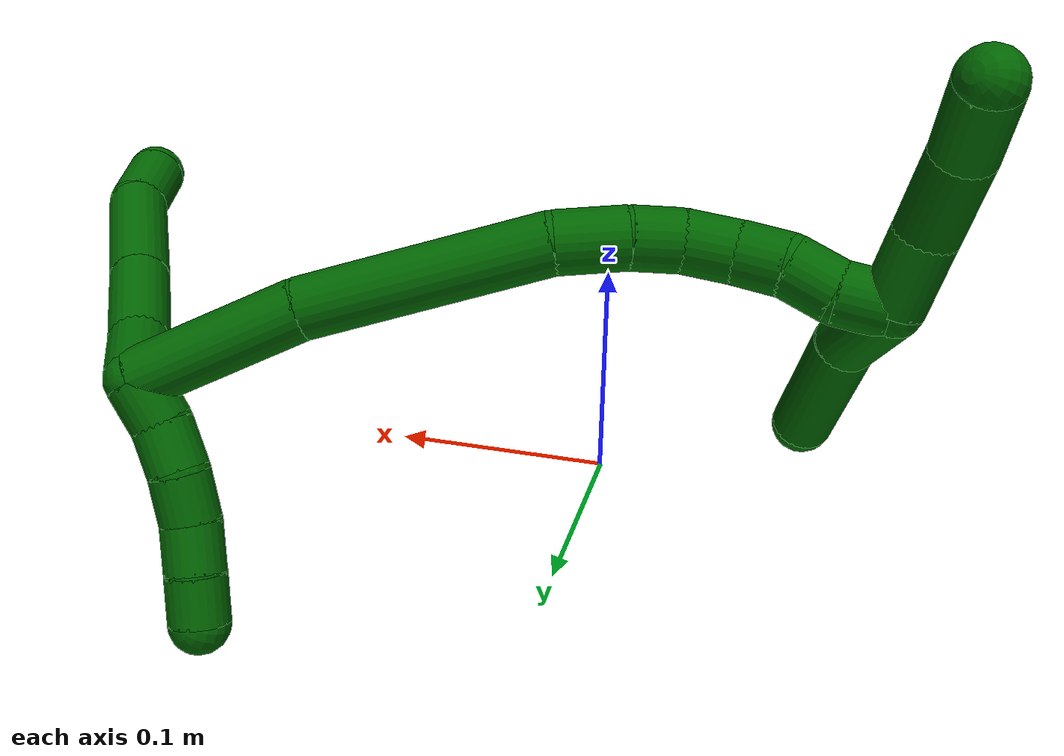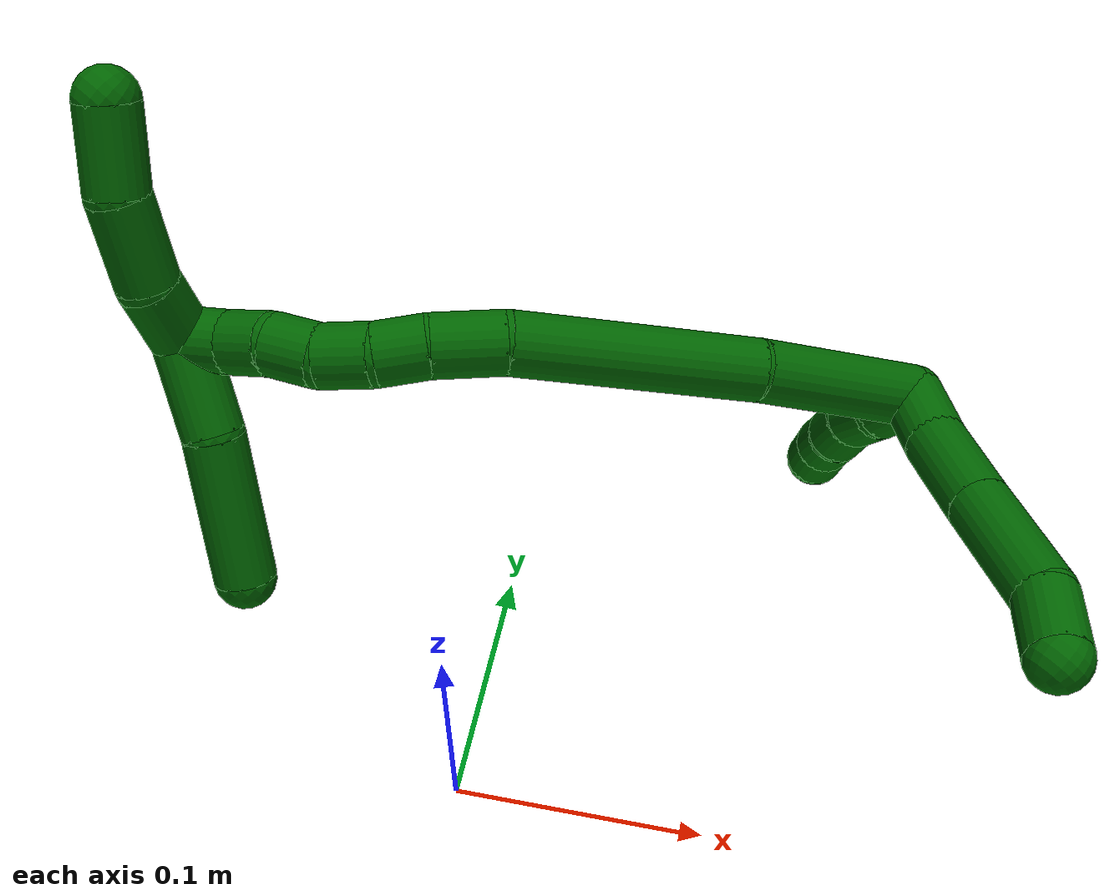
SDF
<sdf version="1.7">
 <world name="default">
  <model name="6">
   <static>0</static>
   <link name="6">
    <collision name="collision-cylinder-e_1_2_8">
     <pose>0.010932 -0.00581 -0.005757 2.35159 0.928475 1.75298</pose>
     <geometry><cylinder><radius>0.0125</radius><length>0.027306</length></cylinder></geometry>
     <surface>
      <friction><ode><mu>1.16</mu><mu2>1.16</mu2><slip1>0</slip1><slip2>0</slip2></ode></friction>
      <contact><ode><kp>1e+06</kp><kd>1</kd><max_vel>0</max_vel><min_depth>0.001</min_depth></ode></contact>
     </surface>
    </collision>
    <visual name="visual-cylinder-e_1_2_8">
     <pose>0.010932 -0.00581 -0.005757 2.35159 0.928475 1.75298</pose>
     <geometry><cylinder><radius>0.0125</radius><length>0.027306</length></cylinder></geometry>
     <material><ambient>0 0.392157 0.003922 1</ambient></material>
    </visual>
    <collision name="collision-cylinder-e_2_8_9">
     <pose>0.038104 -0.022466 -0.018352 2.13334 0.902463 1.44148</pose>
     <geometry><cylinder><radius>0.0125</radius><length>0.041381</length></cylinder></geometry>
     <surface>
      <friction><ode><mu>1.16</mu><mu2>1.16</mu2><slip1>0</slip1><slip2>0</slip2></ode></friction>
      <contact><ode><kp>1e+06</kp><kd>1</kd><max_vel>0</max_vel><min_depth>0.001</min_depth></ode></contact>
     </surface>
    </collision>
    <visual name="visual-cylinder-e_2_8_9">
     <pose>0.038104 -0.022466 -0.018352 2.13334 0.902463 1.44148</pose>
     <geometry><cylinder><radius>0.0125</radius><length>0.041381</length></cylinder></geometry>
     <material><ambient>0 0.392157 0.003922 1</ambient></material>
    </visual>
    <collision name="collision-cylinder-e_3_9_10">
     <pose>0.075272 -0.047138 -0.033486 2.1112 0.914351 1.43066</pose>
     <geometry><cylinder><radius>0.0125</radius><length>0.052841</length></cylinder></geometry>
     <surface>
      <friction><ode><mu>1.16</mu><mu2>1.16</mu2><slip1>0</slip1><slip2>0</slip2></ode></friction>
      <contact><ode><kp>1e+06</kp><kd>1</kd><max_vel>0</max_vel><min_depth>0.001</min_depth></ode></contact>
     </surface>
    </collision>
    <visual name="visual-cylinder-e_3_9_10">
     <pose>0.075272 -0.047138 -0.033486 2.1112 0.914351 1.43066</pose>
     <geometry><cylinder><radius>0.0125</radius><length>0.052841</length></cylinder></geometry>
     <material><ambient>0 0.392157 0.003922 1</ambient></material>
    </visual>
    <collision name="collision-cylinder-e_4_10_6">
     <pose>0.105201 -0.068302 -0.050018 2.41388 0.684383 1.50404</pose>
     <geometry><cylinder><radius>0.0125</radius><length>0.028472</length></cylinder></geometry>
     <surface>
      <friction><ode><mu>1.16</mu><mu2>1.16</mu2><slip1>0</slip1><slip2>0</slip2></ode></friction>
      <contact><ode><kp>1e+06</kp><kd>1</kd><max_vel>0</max_vel><min_depth>0.001</min_depth></ode></contact>
     </surface>
    </collision>
    <visual name="visual-cylinder-e_4_10_6">
     <pose>0.105201 -0.068302 -0.050018 2.41388 0.684383 1.50404</pose>
     <geometry><cylinder><radius>0.0125</radius><length>0.028472</length></cylinder></geometry>
     <material><ambient>0 0.392157 0.003922 1</ambient></material>
    </visual>
    <collision name="collision-cylinder-e_1_2_11">
     <pose>-0.004983 0.007182 -0.004856 -2.16533 -0.521689 0.931605</pose>
     <geometry><cylinder><radius>0.0125</radius><length>0.02</length></cylinder></geometry>
     <surface>
      <friction><ode><mu>1.16</mu><mu2>1.16</mu2><slip1>0</slip1><slip2>0</slip2></ode></friction>
      <contact><ode><kp>1e+06</kp><kd>1</kd><max_vel>0</max_vel><min_depth>0.001</min_depth></ode></contact>
     </surface>
    </collision>
    <visual name="visual-cylinder-e_1_2_11">
     <pose>-0.004983 0.007182 -0.004856 -2.16533 -0.521689 0.931605</pose>
     <geometry><cylinder><radius>0.0125</radius><length>0.02</length></cylinder></geometry>
     <material><ambient>0 0.392157 0.003922 1</ambient></material>
    </visual>
    <collision name="collision-cylinder-e_2_11_12">
     <pose>-0.01483 0.022529 -0.012823 -1.93484 -0.507878 0.720408</pose>
     <geometry><cylinder><radius>0.0125</radius><length>0.02</length></cylinder></geometry>
     <surface>
      <friction><ode><mu>1.16</mu><mu2>1.16</mu2><slip1>0</slip1><slip2>0</slip2></ode></friction>
      <contact><ode><kp>1e+06</kp><kd>1</kd><max_vel>0</max_vel><min_depth>0.001</min_depth></ode></contact>
     </surface>
    </collision>
    <visual name="visual-cylinder-e_2_11_12">
     <pose>-0.01483 0.022529 -0.012823 -1.93484 -0.507878 0.720408</pose>
     <geometry><cylinder><radius>0.0125</radius><length>0.02</length></cylinder></geometry>
     <material><ambient>0 0.392157 0.003922 1</ambient></material>
    </visual>
    <collision name="collision-cylinder-e_3_12_13">
     <pose>-0.022561 0.039665 -0.019298 -1.92948 -0.29084 0.416501</pose>
     <geometry><cylinder><radius>0.0125</radius><length>0.02</length></cylinder></geometry>
     <surface>
      <friction><ode><mu>1.16</mu><mu2>1.16</mu2><slip1>0</slip1><slip2>0</slip2></ode></friction>
      <contact><ode><kp>1e+06</kp><kd>1</kd><max_vel>0</max_vel><min_depth>0.001</min_depth></ode></contact>
     </surface>
    </collision>
    <visual name="visual-cylinder-e_3_12_13">
     <pose>-0.022561 0.039665 -0.019298 -1.92948 -0.29084 0.416501</pose>
     <geometry><cylinder><radius>0.0125</radius><length>0.02</length></cylinder></geometry>
     <material><ambient>0 0.392157 0.003922 1</ambient></material>
    </visual>
    <collision name="collision-cylinder-e_4_13_14">
     <pose>-0.028357 0.058034 -0.024416 -1.75547 -0.297249 0.356745</pose>
     <geometry><cylinder><radius>0.0125</radius><length>0.02</length></cylinder></geometry>
     <surface>
      <friction><ode><mu>1.16</mu><mu2>1.16</mu2><slip1>0</slip1><slip2>0</slip2></ode></friction>
      <contact><ode><kp>1e+06</kp><kd>1</kd><max_vel>0</max_vel><min_depth>0.001</min_depth></ode></contact>
     </surface>
    </collision>
    <visual name="visual-cylinder-e_4_13_14">
     <pose>-0.028357 0.058034 -0.024416 -1.75547 -0.297249 0.356745</pose>
     <geometry><cylinder><radius>0.0125</radius><length>0.02</length></cylinder></geometry>
     <material><ambient>0 0.392157 0.003922 1</ambient></material>
    </visual>
    <collision name="collision-cylinder-e_5_14_5">
     <pose>-0.033425 0.076955 -0.028354 -1.79604 -0.215491 0.269854</pose>
     <geometry><cylinder><radius>0.0125</radius><length>0.02</length></cylinder></geometry>
     <surface>
      <friction><ode><mu>1.16</mu><mu2>1.16</mu2><slip1>0</slip1><slip2>0</slip2></ode></friction>
      <contact><ode><kp>1e+06</kp><kd>1</kd><max_vel>0</max_vel><min_depth>0.001</min_depth></ode></contact>
     </surface>
    </collision>
    <visual name="visual-cylinder-e_5_14_5">
     <pose>-0.033425 0.076955 -0.028354 -1.79604 -0.215491 0.269854</pose>
     <geometry><cylinder><radius>0.0125</radius><length>0.02</length></cylinder></geometry>
     <material><ambient>0 0.392157 0.003922 1</ambient></material>
    </visual>
    <collision name="collision-cylinder-e_1_2_15">
     <pose>-0.021072 -0.02141 -0.018332 2.27889 -0.641975 -1.25119</pose>
     <geometry><cylinder><radius>0.0125</radius><length>0.070384</length></cylinder></geometry>
     <surface>
      <friction><ode><mu>1.16</mu><mu2>1.16</mu2><slip1>0</slip1><slip2>0</slip2></ode></friction>
      <contact><ode><kp>1e+06</kp><kd>1</kd><max_vel>0</max_vel><min_depth>0.001</min_depth></ode></contact>
     </surface>
    </collision>
    <visual name="visual-cylinder-e_1_2_15">
     <pose>-0.021072 -0.02141 -0.018332 2.27889 -0.641975 -1.25119</pose>
     <geometry><cylinder><radius>0.0125</radius><length>0.070384</length></cylinder></geometry>
     <material><ambient>0 0.392157 0.003922 1</ambient></material>
    </visual>
    <collision name="collision-cylinder-e_2_15_16">
     <pose>-0.075059 -0.066966 -0.065173 2.43887 -0.722216 -1.60061</pose>
     <geometry><cylinder><radius>0.0125</radius><length>0.099583</length></cylinder></geometry>
     <surface>
      <friction><ode><mu>1.16</mu><mu2>1.16</mu2><slip1>0</slip1><slip2>0</slip2></ode></friction>
      <contact><ode><kp>1e+06</kp><kd>1</kd><max_vel>0</max_vel><min_depth>0.001</min_depth></ode></contact>
     </surface>
    </collision>
    <visual name="visual-cylinder-e_2_15_16">
     <pose>-0.075059 -0.066966 -0.065173 2.43887 -0.722216 -1.60061</pose>
     <geometry><cylinder><radius>0.0125</radius><length>0.099583</length></cylinder></geometry>
     <material><ambient>0 0.392157 0.003922 1</ambient></material>
    </visual>
    <collision name="collision-cylinder-e_3_16_17">
     <pose>-0.117296 -0.095581 -0.103585 2.71767 -0.70916 -2.08857</pose>
     <geometry><cylinder><radius>0.0125</radius><length>0.02863</length></cylinder></geometry>
     <surface>
      <friction><ode><mu>1.16</mu><mu2>1.16</mu2><slip1>0</slip1><slip2>0</slip2></ode></friction>
      <contact><ode><kp>1e+06</kp><kd>1</kd><max_vel>0</max_vel><min_depth>0.001</min_depth></ode></contact>
     </surface>
    </collision>
    <visual name="visual-cylinder-e_3_16_17">
     <pose>-0.117296 -0.095581 -0.103585 2.71767 -0.70916 -2.08857</pose>
     <geometry><cylinder><radius>0.0125</radius><length>0.02863</length></cylinder></geometry>
     <material><ambient>0 0.392157 0.003922 1</ambient></material>
    </visual>
    <collision name="collision-cylinder-e_4_17_18">
     <pose>-0.132855 -0.102013 -0.121211 2.8928 -0.664033 -2.44575</pose>
     <geometry><cylinder><radius>0.0125</radius><length>0.020241</length></cylinder></geometry>
     <surface>
      <friction><ode><mu>1.16</mu><mu2>1.16</mu2><slip1>0</slip1><slip2>0</slip2></ode></friction>
      <contact><ode><kp>1e+06</kp><kd>1</kd><max_vel>0</max_vel><min_depth>0.001</min_depth></ode></contact>
     </surface>
    </collision>
    <visual name="visual-cylinder-e_4_17_18">
     <pose>-0.132855 -0.102013 -0.121211 2.8928 -0.664033 -2.44575</pose>
     <geometry><cylinder><radius>0.0125</radius><length>0.020241</length></cylinder></geometry>
     <material><ambient>0 0.392157 0.003922 1</ambient></material>
    </visual>
    <collision name="collision-cylinder-e_5_18_19">
     <pose>-0.147153 -0.104457 -0.135682 3.07024 -0.872737 -2.98882</pose>
     <geometry><cylinder><radius>0.0125</radius><length>0.021045</length></cylinder></geometry>
     <surface>
      <friction><ode><mu>1.16</mu><mu2>1.16</mu2><slip1>0</slip1><slip2>0</slip2></ode></friction>
      <contact><ode><kp>1e+06</kp><kd>1</kd><max_vel>0</max_vel><min_depth>0.001</min_depth></ode></contact>
     </surface>
    </collision>
    <visual name="visual-cylinder-e_5_18_19">
     <pose>-0.147153 -0.104457 -0.135682 3.07024 -0.872737 -2.98882</pose>
     <geometry><cylinder><radius>0.0125</radius><length>0.021045</length></cylinder></geometry>
     <material><ambient>0 0.392157 0.003922 1</ambient></material>
    </visual>
    <collision name="collision-cylinder-e_6_19_20">
     <pose>-0.164392 -0.104879 -0.146406 -3.12653 -1.16167 3.11865</pose>
     <geometry><cylinder><radius>0.0125</radius><length>0.020007</length></cylinder></geometry>
     <surface>
      <friction><ode><mu>1.16</mu><mu2>1.16</mu2><slip1>0</slip1><slip2>0</slip2></ode></friction>
      <contact><ode><kp>1e+06</kp><kd>1</kd><max_vel>0</max_vel><min_depth>0.001</min_depth></ode></contact>
     </surface>
    </collision>
    <visual name="visual-cylinder-e_6_19_20">
     <pose>-0.164392 -0.104879 -0.146406 -3.12653 -1.16167 3.11865</pose>
     <geometry><cylinder><radius>0.0125</radius><length>0.020007</length></cylinder></geometry>
     <material><ambient>0 0.392157 0.003922 1</ambient></material>
    </visual>
    <collision name="collision-cylinder-e_7_20_21">
     <pose>-0.181953 -0.102243 -0.155263 -2.65573 -0.988775 2.27971</pose>
     <geometry><cylinder><radius>0.0125</radius><length>0.02007</length></cylinder></geometry>
     <surface>
      <friction><ode><mu>1.16</mu><mu2>1.16</mu2><slip1>0</slip1><slip2>0</slip2></ode></friction>
      <contact><ode><kp>1e+06</kp><kd>1</kd><max_vel>0</max_vel><min_depth>0.001</min_depth></ode></contact>
     </surface>
    </collision>
    <visual name="visual-cylinder-e_7_20_21">
     <pose>-0.181953 -0.102243 -0.155263 -2.65573 -0.988775 2.27971</pose>
     <geometry><cylinder><radius>0.0125</radius><length>0.02007</length></cylinder></geometry>
     <material><ambient>0 0.392157 0.003922 1</ambient></material>
    </visual>
    <collision name="collision-cylinder-e_8_21_1">
     <pose>-0.198781 -0.099676 -0.165534 3.13997 -1.00248 -3.13863</pose>
     <geometry><cylinder><radius>0.0125</radius><length>0.02004</length></cylinder></geometry>
     <surface>
      <friction><ode><mu>1.16</mu><mu2>1.16</mu2><slip1>0</slip1><slip2>0</slip2></ode></friction>
      <contact><ode><kp>1e+06</kp><kd>1</kd><max_vel>0</max_vel><min_depth>0.001</min_depth></ode></contact>
     </surface>
    </collision>
    <visual name="visual-cylinder-e_8_21_1">
     <pose>-0.198781 -0.099676 -0.165534 3.13997 -1.00248 -3.13863</pose>
     <geometry><cylinder><radius>0.0125</radius><length>0.02004</length></cylinder></geometry>
     <material><ambient>0 0.392157 0.003922 1</ambient></material>
    </visual>
    <collision name="collision-cylinder-e_1_1_22">
     <pose>-0.211999 -0.113372 -0.167049 1.29471 -0.323764 -0.245697</pose>
     <geometry><cylinder><radius>0.0125</radius><length>0.030011</length></cylinder></geometry>
     <surface>
      <friction><ode><mu>1.16</mu><mu2>1.16</mu2><slip1>0</slip1><slip2>0</slip2></ode></friction>
      <contact><ode><kp>1e+06</kp><kd>1</kd><max_vel>0</max_vel><min_depth>0.001</min_depth></ode></contact>
     </surface>
    </collision>
    <visual name="visual-cylinder-e_1_1_22">
     <pose>-0.211999 -0.113372 -0.167049 1.29471 -0.323764 -0.245697</pose>
     <geometry><cylinder><radius>0.0125</radius><length>0.030011</length></cylinder></geometry>
     <material><ambient>0 0.392157 0.003922 1</ambient></material>
    </visual>
    <collision name="collision-cylinder-e_2_22_23">
     <pose>-0.224368 -0.140931 -0.154538 1.01409 -0.435112 -0.244364</pose>
     <geometry><cylinder><radius>0.0125</radius><length>0.036037</length></cylinder></geometry>
     <surface>
      <friction><ode><mu>1.16</mu><mu2>1.16</mu2><slip1>0</slip1><slip2>0</slip2></ode></friction>
      <contact><ode><kp>1e+06</kp><kd>1</kd><max_vel>0</max_vel><min_depth>0.001</min_depth></ode></contact>
     </surface>
    </collision>
    <visual name="visual-cylinder-e_2_22_23">
     <pose>-0.224368 -0.140931 -0.154538 1.01409 -0.435112 -0.244364</pose>
     <geometry><cylinder><radius>0.0125</radius><length>0.036037</length></cylinder></geometry>
     <material><ambient>0 0.392157 0.003922 1</ambient></material>
    </visual>
    <collision name="collision-cylinder-e_3_23_4">
     <pose>-0.239343 -0.16498 -0.134495 0.728349 -0.449752 -0.173944</pose>
     <geometry><cylinder><radius>0.0125</radius><length>0.033953</length></cylinder></geometry>
     <surface>
      <friction><ode><mu>1.16</mu><mu2>1.16</mu2><slip1>0</slip1><slip2>0</slip2></ode></friction>
      <contact><ode><kp>1e+06</kp><kd>1</kd><max_vel>0</max_vel><min_depth>0.001</min_depth></ode></contact>
     </surface>
    </collision>
    <visual name="visual-cylinder-e_3_23_4">
     <pose>-0.239343 -0.16498 -0.134495 0.728349 -0.449752 -0.173944</pose>
     <geometry><cylinder><radius>0.0125</radius><length>0.033953</length></cylinder></geometry>
     <material><ambient>0 0.392157 0.003922 1</ambient></material>
    </visual>
    <collision name="collision-cylinder-e_1_1_24">
     <pose>-0.193592 -0.090811 -0.181261 -2.43208 0.785856 -1.68294</pose>
     <geometry><cylinder><radius>0.0125</radius><length>0.038543</length></cylinder></geometry>
     <surface>
      <friction><ode><mu>1.16</mu><mu2>1.16</mu2><slip1>0</slip1><slip2>0</slip2></ode></friction>
      <contact><ode><kp>1e+06</kp><kd>1</kd><max_vel>0</max_vel><min_depth>0.001</min_depth></ode></contact>
     </surface>
    </collision>
    <visual name="visual-cylinder-e_1_1_24">
     <pose>-0.193592 -0.090811 -0.181261 -2.43208 0.785856 -1.68294</pose>
     <geometry><cylinder><radius>0.0125</radius><length>0.038543</length></cylinder></geometry>
     <material><ambient>0 0.392157 0.003922 1</ambient></material>
    </visual>
    <collision name="collision-cylinder-e_2_24_3">
     <pose>-0.164071 -0.062854 -0.209695 -2.32973 0.543379 -1.15016</pose>
     <geometry><cylinder><radius>0.0125</radius><length>0.061457</length></cylinder></geometry>
     <surface>
      <friction><ode><mu>1.16</mu><mu2>1.16</mu2><slip1>0</slip1><slip2>0</slip2></ode></friction>
      <contact><ode><kp>1e+06</kp><kd>1</kd><max_vel>0</max_vel><min_depth>0.001</min_depth></ode></contact>
     </surface>
    </collision>
    <visual name="visual-cylinder-e_2_24_3">
     <pose>-0.164071 -0.062854 -0.209695 -2.32973 0.543379 -1.15016</pose>
     <geometry><cylinder><radius>0.0125</radius><length>0.061457</length></cylinder></geometry>
     <material><ambient>0 0.392157 0.003922 1</ambient></material>
    </visual>
    <collision name="collision-sphere-3">
     <pose>-0.148184 -0.04377 -0.227795 0 -0 0</pose>
     <geometry><sphere><radius>0.0125</radius></sphere></geometry>
     <surface>
      <friction><ode><mu>1.16</mu><mu2>1.16</mu2><slip1>0</slip1><slip2>0</slip2></ode></friction>
      <contact><ode><kp>1e+06</kp><kd>1</kd><max_vel>0</max_vel><min_depth>0.001</min_depth></ode></contact>
     </surface>
    </collision>
    <visual name="visual-sphere-3">
     <pose>-0.148184 -0.04377 -0.227795 0 -0 0</pose>
     <geometry><sphere><radius>0.0125</radius></sphere></geometry>
     <material><ambient>0 0.392157 0.003922 1</ambient></material>
    </visual>
    <collision name="collision-sphere-24">
     <pose>-0.179959 -0.081938 -0.191595 0 -0 0</pose>
     <geometry><sphere><radius>0.0125</radius></sphere></geometry>
     <surface>
      <friction><ode><mu>1.16</mu><mu2>1.16</mu2><slip1>0</slip1><slip2>0</slip2></ode></friction>
      <contact><ode><kp>1e+06</kp><kd>1</kd><max_vel>0</max_vel><min_depth>0.001</min_depth></ode></contact>
     </surface>
    </collision>
    <visual name="visual-sphere-24">
     <pose>-0.179959 -0.081938 -0.191595 0 -0 0</pose>
     <geometry><sphere><radius>0.0125</radius></sphere></geometry>
     <material><ambient>0 0.392157 0.003922 1</ambient></material>
    </visual>
    <collision name="collision-sphere-4">
     <pose>-0.246724 -0.175156 -0.123086 0 -0 0</pose>
     <geometry><sphere><radius>0.0125</radius></sphere></geometry>
     <surface>
      <friction><ode><mu>1.16</mu><mu2>1.16</mu2><slip1>0</slip1><slip2>0</slip2></ode></friction>
      <contact><ode><kp>1e+06</kp><kd>1</kd><max_vel>0</max_vel><min_depth>0.001</min_depth></ode></contact>
     </surface>
    </collision>
    <visual name="visual-sphere-4">
     <pose>-0.246724 -0.175156 -0.123086 0 -0 0</pose>
     <geometry><sphere><radius>0.0125</radius></sphere></geometry>
     <material><ambient>0 0.392157 0.003922 1</ambient></material>
    </visual>
    <collision name="collision-sphere-23">
     <pose>-0.231963 -0.154803 -0.145905 0 -0 0</pose>
     <geometry><sphere><radius>0.0125</radius></sphere></geometry>
     <surface>
      <friction><ode><mu>1.16</mu><mu2>1.16</mu2><slip1>0</slip1><slip2>0</slip2></ode></friction>
      <contact><ode><kp>1e+06</kp><kd>1</kd><max_vel>0</max_vel><min_depth>0.001</min_depth></ode></contact>
     </surface>
    </collision>
    <visual name="visual-sphere-23">
     <pose>-0.231963 -0.154803 -0.145905 0 -0 0</pose>
     <geometry><sphere><radius>0.0125</radius></sphere></geometry>
     <material><ambient>0 0.392157 0.003922 1</ambient></material>
    </visual>
    <collision name="collision-sphere-22">
     <pose>-0.216773 -0.127059 -0.163172 0 -0 0</pose>
     <geometry><sphere><radius>0.0125</radius></sphere></geometry>
     <surface>
      <friction><ode><mu>1.16</mu><mu2>1.16</mu2><slip1>0</slip1><slip2>0</slip2></ode></friction>
      <contact><ode><kp>1e+06</kp><kd>1</kd><max_vel>0</max_vel><min_depth>0.001</min_depth></ode></contact>
     </surface>
    </collision>
    <visual name="visual-sphere-22">
     <pose>-0.216773 -0.127059 -0.163172 0 -0 0</pose>
     <geometry><sphere><radius>0.0125</radius></sphere></geometry>
     <material><ambient>0 0.392157 0.003922 1</ambient></material>
    </visual>
    <collision name="collision-sphere-1">
     <pose>-0.207225 -0.099685 -0.170927 0 -0 0</pose>
     <geometry><sphere><radius>0.0125</radius></sphere></geometry>
     <surface>
      <friction><ode><mu>1.16</mu><mu2>1.16</mu2><slip1>0</slip1><slip2>0</slip2></ode></friction>
      <contact><ode><kp>1e+06</kp><kd>1</kd><max_vel>0</max_vel><min_depth>0.001</min_depth></ode></contact>
     </surface>
    </collision>
    <visual name="visual-sphere-1">
     <pose>-0.207225 -0.099685 -0.170927 0 -0 0</pose>
     <geometry><sphere><radius>0.0125</radius></sphere></geometry>
     <material><ambient>0 0.392157 0.003922 1</ambient></material>
    </visual>
    <collision name="collision-sphere-21">
     <pose>-0.190336 -0.099667 -0.160141 0 -0 0</pose>
     <geometry><sphere><radius>0.0125</radius></sphere></geometry>
     <surface>
      <friction><ode><mu>1.16</mu><mu2>1.16</mu2><slip1>0</slip1><slip2>0</slip2></ode></friction>
      <contact><ode><kp>1e+06</kp><kd>1</kd><max_vel>0</max_vel><min_depth>0.001</min_depth></ode></contact>
     </surface>
    </collision>
    <visual name="visual-sphere-21">
     <pose>-0.190336 -0.099667 -0.160141 0 -0 0</pose>
     <geometry><sphere><radius>0.0125</radius></sphere></geometry>
     <material><ambient>0 0.392157 0.003922 1</ambient></material>
    </visual>
    <collision name="collision-sphere-11">
     <pose>-0.009967 0.014364 -0.009712 0 -0 0</pose>
     <geometry><sphere><radius>0.0125</radius></sphere></geometry>
     <surface>
      <friction><ode><mu>1.16</mu><mu2>1.16</mu2><slip1>0</slip1><slip2>0</slip2></ode></friction>
      <contact><ode><kp>1e+06</kp><kd>1</kd><max_vel>0</max_vel><min_depth>0.001</min_depth></ode></contact>
     </surface>
    </collision>
    <visual name="visual-sphere-11">
     <pose>-0.009967 0.014364 -0.009712 0 -0 0</pose>
     <geometry><sphere><radius>0.0125</radius></sphere></geometry>
     <material><ambient>0 0.392157 0.003922 1</ambient></material>
    </visual>
    <collision name="collision-sphere-6">
     <pose>0.114201 -0.075639 -0.058254 0 -0 0</pose>
     <geometry><sphere><radius>0.0125</radius></sphere></geometry>
     <surface>
      <friction><ode><mu>1.16</mu><mu2>1.16</mu2><slip1>0</slip1><slip2>0</slip2></ode></friction>
      <contact><ode><kp>1e+06</kp><kd>1</kd><max_vel>0</max_vel><min_depth>0.001</min_depth></ode></contact>
     </surface>
    </collision>
    <visual name="visual-sphere-6">
     <pose>0.114201 -0.075639 -0.058254 0 -0 0</pose>
     <geometry><sphere><radius>0.0125</radius></sphere></geometry>
     <material><ambient>0 0.392157 0.003922 1</ambient></material>
    </visual>
    <collision name="collision-sphere-10">
     <pose>0.096201 -0.060965 -0.041782 0 -0 0</pose>
     <geometry><sphere><radius>0.0125</radius></sphere></geometry>
     <surface>
      <friction><ode><mu>1.16</mu><mu2>1.16</mu2><slip1>0</slip1><slip2>0</slip2></ode></friction>
      <contact><ode><kp>1e+06</kp><kd>1</kd><max_vel>0</max_vel><min_depth>0.001</min_depth></ode></contact>
     </surface>
    </collision>
    <visual name="visual-sphere-10">
     <pose>0.096201 -0.060965 -0.041782 0 -0 0</pose>
     <geometry><sphere><radius>0.0125</radius></sphere></geometry>
     <material><ambient>0 0.392157 0.003922 1</ambient></material>
    </visual>
    <collision name="collision-sphere-9">
     <pose>0.054343 -0.033312 -0.02519 0 -0 0</pose>
     <geometry><sphere><radius>0.0125</radius></sphere></geometry>
     <surface>
      <friction><ode><mu>1.16</mu><mu2>1.16</mu2><slip1>0</slip1><slip2>0</slip2></ode></friction>
      <contact><ode><kp>1e+06</kp><kd>1</kd><max_vel>0</max_vel><min_depth>0.001</min_depth></ode></contact>
     </surface>
    </collision>
    <visual name="visual-sphere-9">
     <pose>0.054343 -0.033312 -0.02519 0 -0 0</pose>
     <geometry><sphere><radius>0.0125</radius></sphere></geometry>
     <material><ambient>0 0.392157 0.003922 1</ambient></material>
    </visual>
    <collision name="collision-sphere-2">
     <geometry><sphere><radius>0.0125</radius></sphere></geometry>
     <surface>
      <friction><ode><mu>1.16</mu><mu2>1.16</mu2><slip1>0</slip1><slip2>0</slip2></ode></friction>
      <contact><ode><kp>1e+06</kp><kd>1</kd><max_vel>0</max_vel><min_depth>0.001</min_depth></ode></contact>
     </surface>
    </collision>
    <visual name="visual-sphere-2">
     <geometry><sphere><radius>0.0125</radius></sphere></geometry>
     <material><ambient>0 0.392157 0.003922 1</ambient></material>
    </visual>
    <collision name="collision-sphere-19">
     <pose>-0.155214 -0.104939 -0.142428 0 -0 0</pose>
     <geometry><sphere><radius>0.0125</radius></sphere></geometry>
     <surface>
      <friction><ode><mu>1.16</mu><mu2>1.16</mu2><slip1>0</slip1><slip2>0</slip2></ode></friction>
      <contact><ode><kp>1e+06</kp><kd>1</kd><max_vel>0</max_vel><min_depth>0.001</min_depth></ode></contact>
     </surface>
    </collision>
    <visual name="visual-sphere-19">
     <pose>-0.155214 -0.104939 -0.142428 0 -0 0</pose>
     <geometry><sphere><radius>0.0125</radius></sphere></geometry>
     <material><ambient>0 0.392157 0.003922 1</ambient></material>
    </visual>
    <collision name="collision-sphere-8">
     <pose>0.021865 -0.01162 -0.011514 0 -0 0</pose>
     <geometry><sphere><radius>0.0125</radius></sphere></geometry>
     <surface>
      <friction><ode><mu>1.16</mu><mu2>1.16</mu2><slip1>0</slip1><slip2>0</slip2></ode></friction>
      <contact><ode><kp>1e+06</kp><kd>1</kd><max_vel>0</max_vel><min_depth>0.001</min_depth></ode></contact>
     </surface>
    </collision>
    <visual name="visual-sphere-8">
     <pose>0.021865 -0.01162 -0.011514 0 -0 0</pose>
     <geometry><sphere><radius>0.0125</radius></sphere></geometry>
     <material><ambient>0 0.392157 0.003922 1</ambient></material>
    </visual>
    <collision name="collision-sphere-12">
     <pose>-0.019693 0.030695 -0.015935 0 -0 0</pose>
     <geometry><sphere><radius>0.0125</radius></sphere></geometry>
     <surface>
      <friction><ode><mu>1.16</mu><mu2>1.16</mu2><slip1>0</slip1><slip2>0</slip2></ode></friction>
      <contact><ode><kp>1e+06</kp><kd>1</kd><max_vel>0</max_vel><min_depth>0.001</min_depth></ode></contact>
     </surface>
    </collision>
    <visual name="visual-sphere-12">
     <pose>-0.019693 0.030695 -0.015935 0 -0 0</pose>
     <geometry><sphere><radius>0.0125</radius></sphere></geometry>
     <material><ambient>0 0.392157 0.003922 1</ambient></material>
    </visual>
    <collision name="collision-sphere-13">
     <pose>-0.025429 0.048635 -0.022661 0 -0 0</pose>
     <geometry><sphere><radius>0.0125</radius></sphere></geometry>
     <surface>
      <friction><ode><mu>1.16</mu><mu2>1.16</mu2><slip1>0</slip1><slip2>0</slip2></ode></friction>
      <contact><ode><kp>1e+06</kp><kd>1</kd><max_vel>0</max_vel><min_depth>0.001</min_depth></ode></contact>
     </surface>
    </collision>
    <visual name="visual-sphere-13">
     <pose>-0.025429 0.048635 -0.022661 0 -0 0</pose>
     <geometry><sphere><radius>0.0125</radius></sphere></geometry>
     <material><ambient>0 0.392157 0.003922 1</ambient></material>
    </visual>
    <collision name="collision-sphere-14">
     <pose>-0.031286 0.067433 -0.026172 0 -0 0</pose>
     <geometry><sphere><radius>0.0125</radius></sphere></geometry>
     <surface>
      <friction><ode><mu>1.16</mu><mu2>1.16</mu2><slip1>0</slip1><slip2>0</slip2></ode></friction>
      <contact><ode><kp>1e+06</kp><kd>1</kd><max_vel>0</max_vel><min_depth>0.001</min_depth></ode></contact>
     </surface>
    </collision>
    <visual name="visual-sphere-14">
     <pose>-0.031286 0.067433 -0.026172 0 -0 0</pose>
     <geometry><sphere><radius>0.0125</radius></sphere></geometry>
     <material><ambient>0 0.392157 0.003922 1</ambient></material>
    </visual>
    <collision name="collision-sphere-5">
     <pose>-0.035563 0.086477 -0.030536 0 -0 0</pose>
     <geometry><sphere><radius>0.0125</radius></sphere></geometry>
     <surface>
      <friction><ode><mu>1.16</mu><mu2>1.16</mu2><slip1>0</slip1><slip2>0</slip2></ode></friction>
      <contact><ode><kp>1e+06</kp><kd>1</kd><max_vel>0</max_vel><min_depth>0.001</min_depth></ode></contact>
     </surface>
    </collision>
    <visual name="visual-sphere-5">
     <pose>-0.035563 0.086477 -0.030536 0 -0 0</pose>
     <geometry><sphere><radius>0.0125</radius></sphere></geometry>
     <material><ambient>0 0.392157 0.003922 1</ambient></material>
    </visual>
    <collision name="collision-sphere-15">
     <pose>-0.042145 -0.04282 -0.036664 0 -0 0</pose>
     <geometry><sphere><radius>0.0125</radius></sphere></geometry>
     <surface>
      <friction><ode><mu>1.16</mu><mu2>1.16</mu2><slip1>0</slip1><slip2>0</slip2></ode></friction>
      <contact><ode><kp>1e+06</kp><kd>1</kd><max_vel>0</max_vel><min_depth>0.001</min_depth></ode></contact>
     </surface>
    </collision>
    <visual name="visual-sphere-15">
     <pose>-0.042145 -0.04282 -0.036664 0 -0 0</pose>
     <geometry><sphere><radius>0.0125</radius></sphere></geometry>
     <material><ambient>0 0.392157 0.003922 1</ambient></material>
    </visual>
    <collision name="collision-sphere-16">
     <pose>-0.107974 -0.091113 -0.093682 0 -0 0</pose>
     <geometry><sphere><radius>0.0125</radius></sphere></geometry>
     <surface>
      <friction><ode><mu>1.16</mu><mu2>1.16</mu2><slip1>0</slip1><slip2>0</slip2></ode></friction>
      <contact><ode><kp>1e+06</kp><kd>1</kd><max_vel>0</max_vel><min_depth>0.001</min_depth></ode></contact>
     </surface>
    </collision>
    <visual name="visual-sphere-16">
     <pose>-0.107974 -0.091113 -0.093682 0 -0 0</pose>
     <geometry><sphere><radius>0.0125</radius></sphere></geometry>
     <material><ambient>0 0.392157 0.003922 1</ambient></material>
    </visual>
    <collision name="collision-sphere-17">
     <pose>-0.126618 -0.10005 -0.113487 0 -0 0</pose>
     <geometry><sphere><radius>0.0125</radius></sphere></geometry>
     <surface>
      <friction><ode><mu>1.16</mu><mu2>1.16</mu2><slip1>0</slip1><slip2>0</slip2></ode></friction>
      <contact><ode><kp>1e+06</kp><kd>1</kd><max_vel>0</max_vel><min_depth>0.001</min_depth></ode></contact>
     </surface>
    </collision>
    <visual name="visual-sphere-17">
     <pose>-0.126618 -0.10005 -0.113487 0 -0 0</pose>
     <geometry><sphere><radius>0.0125</radius></sphere></geometry>
     <material><ambient>0 0.392157 0.003922 1</ambient></material>
    </visual>
    <collision name="collision-sphere-18">
     <pose>-0.139092 -0.103975 -0.128936 0 -0 0</pose>
     <geometry><sphere><radius>0.0125</radius></sphere></geometry>
     <surface>
      <friction><ode><mu>1.16</mu><mu2>1.16</mu2><slip1>0</slip1><slip2>0</slip2></ode></friction>
      <contact><ode><kp>1e+06</kp><kd>1</kd><max_vel>0</max_vel><min_depth>0.001</min_depth></ode></contact>
     </surface>
    </collision>
    <visual name="visual-sphere-18">
     <pose>-0.139092 -0.103975 -0.128936 0 -0 0</pose>
     <geometry><sphere><radius>0.0125</radius></sphere></geometry>
     <material><ambient>0 0.392157 0.003922 1</ambient></material>
    </visual>
    <collision name="collision-sphere-20">
     <pose>-0.17357 -0.104819 -0.150385 0 -0 0</pose>
     <geometry><sphere><radius>0.0125</radius></sphere></geometry>
     <surface>
      <friction><ode><mu>1.16</mu><mu2>1.16</mu2><slip1>0</slip1><slip2>0</slip2></ode></friction>
      <contact><ode><kp>1e+06</kp><kd>1</kd><max_vel>0</max_vel><min_depth>0.001</min_depth></ode></contact>
     </surface>
    </collision>
    <visual name="visual-sphere-20">
     <pose>-0.17357 -0.104819 -0.150385 0 -0 0</pose>
     <geometry><sphere><radius>0.0125</radius></sphere></geometry>
     <material><ambient>0 0.392157 0.003922 1</ambient></material>
    </visual>
    <inertial>
     <pose>-0.083174 -0.05894 -0.08846 0 -0 0</pose>
     <mass>0.75</mass>
     <inertia><ixx>-7.6e-05</ixx><ixy>0</ixy><ixz>0</ixz><iyy>-2e-05</iyy><iyz>0</iyz><izz>9.7e-05</izz></inertia>
    </inertial>
   </link>
   <pose>0.153999 0.15763 0.100222 -1.15004 0.087038 -0.553276</pose>
  </model>
 </world>
</sdf>
